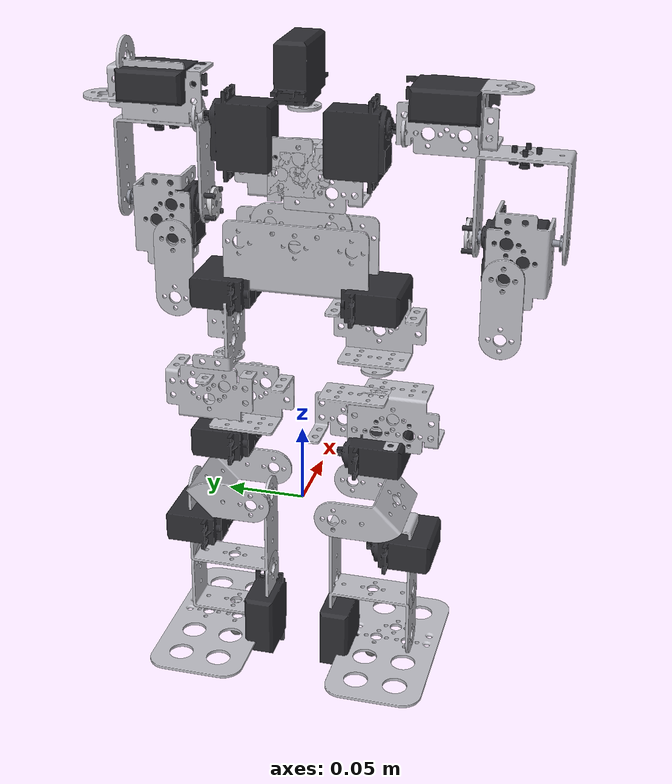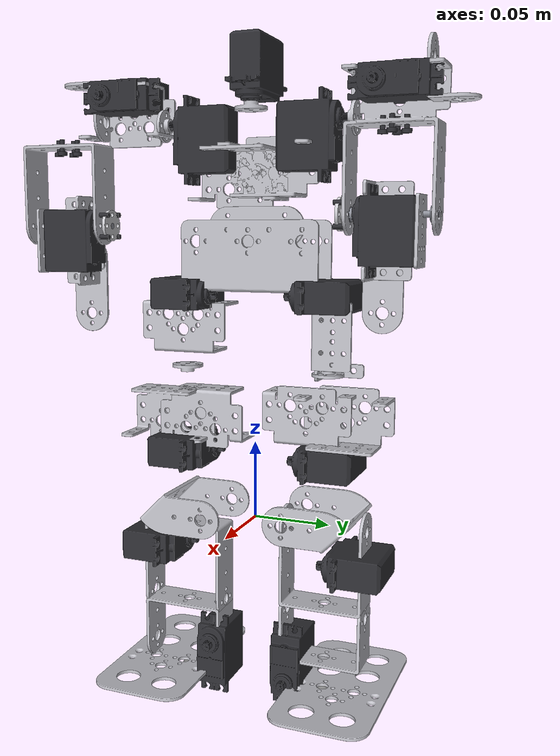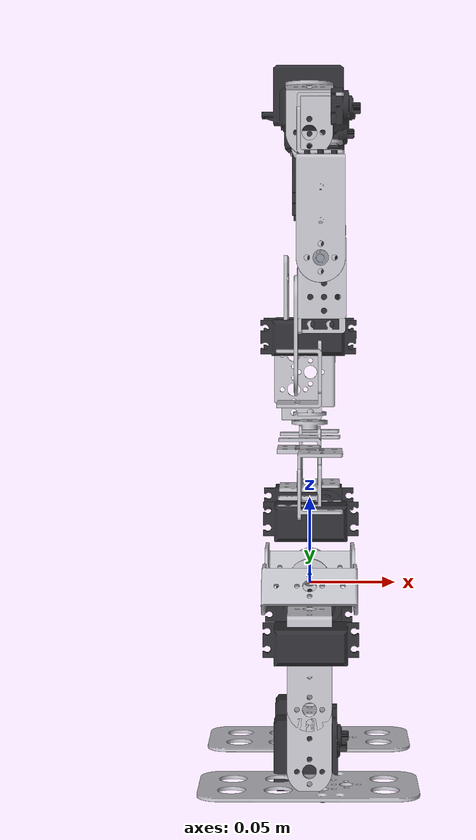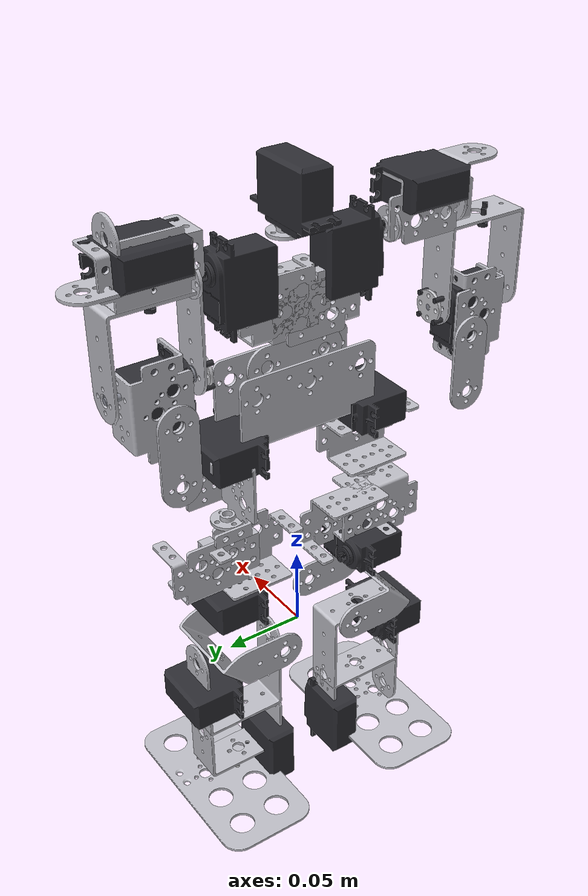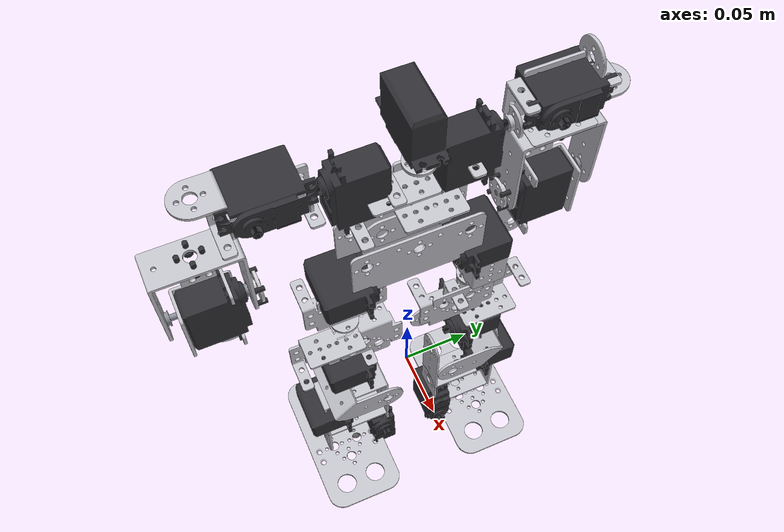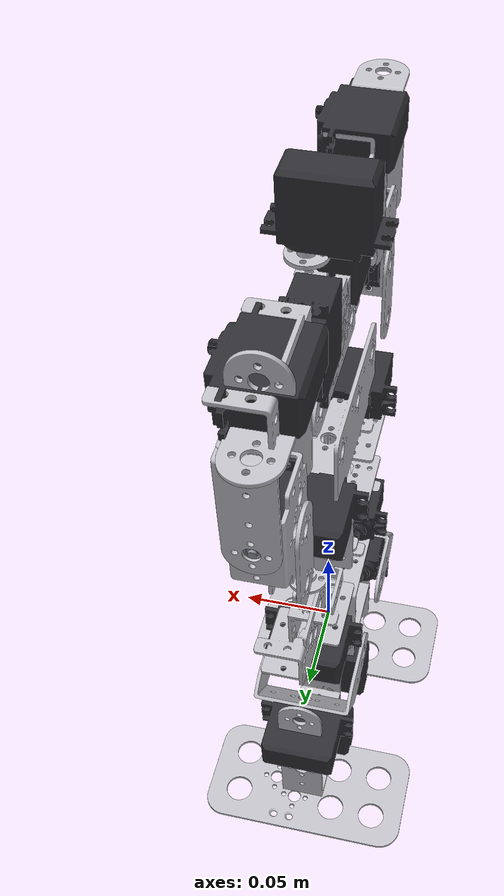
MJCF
<?xml version='1.0' encoding='utf-8'?>
<mujoco model="twoleg">
  <compiler angle="radian" meshdir=".." autolimits="true" />
  <visual>
    <global offwidth="1024" offheight="1024" />
    <headlight ambient="0.55 0.55 0.55" diffuse="0.6 0.6 0.6" specular="0.2 0.2 0.2" />
  </visual>
  <default>
    <default class="twoleg">
      <joint damping="0.05" frictionloss="0.02" armature="0.002" />
      <position kp="20" dampratio="1" forcerange="-3 3" ctrlrange="-1.6 1.6" />
      <default class="visual"><geom type="mesh" contype="0" conaffinity="0" group="2" /></default>
      <default class="collision"><geom group="3" /></default>
    </default>
  </default>
  <asset>
    <mesh name="foot" file="twoleg_mjcf/assets/foot_c.stl" scale="0.001 0.001 0.001" />
    <mesh name="shortU" file="twoleg_mjcf/assets/shortU_c.stl" scale="0.001 0.001 0.001" />
    <mesh name="longU" file="twoleg_mjcf/assets/longU_c.stl" scale="0.001 0.001 0.001" />
    <mesh name="multi" file="twoleg_mjcf/assets/multi_c.stl" scale="0.001 0.001 0.001" />
    <mesh name="straight" file="twoleg_mjcf/assets/straight_c.stl" scale="0.001 0.001 0.001" />
    <mesh name="L_bracket" file="twoleg_mjcf/assets/L_bracket_c.stl" scale="0.001 0.001 0.001" />
    <mesh name="U_beam" file="twoleg_mjcf/assets/U_beam_c.stl" scale="0.001 0.001 0.001" />
    <mesh name="slantU" file="twoleg_mjcf/assets/slantU_c.stl" scale="0.001 0.001 0.001" />
    <mesh name="servo" file="twoleg_mjcf/assets/servo_c.stl" scale="0.001 0.001 0.001" />
    <mesh name="horn" file="twoleg_mjcf/assets/horn_c.stl" scale="0.001 0.001 0.001" />
    <mesh name="bearing" file="twoleg_mjcf/assets/bearing_c.stl" scale="0.001 0.001 0.001" />
    <mesh name="arm_multi" file="robot_item/多功能/多功能支架.STL" scale="0.001 0.001 0.001" />
    <mesh name="arm_straight" file="robot_item/一字/一字支架.STL" scale="0.001 0.001 0.001" />
    <mesh name="arm_servo" file="robot_item/舵机/舵机.STL" scale="0.001 0.001 0.001" />
    <mesh name="arm_horn" file="robot_item/金属舵盘/金属舵盘.STL" scale="0.001 0.001 0.001" />
    <mesh name="arm_longU" file="robot_item/长U/长U支架.STL" scale="0.001 0.001 0.001" />
    <mesh name="arm_bearing" file="robot_item/法兰轴承/法兰轴承.STL" scale="0.001 0.001 0.001" />
    <mesh name="arm_multi_r" file="robot_item/多功能/多功能支架.STL" scale="0.001 -0.001 0.001" />
    <mesh name="arm_straight_r" file="robot_item/一字/一字支架.STL" scale="0.001 -0.001 0.001" />
    <mesh name="arm_servo_r" file="robot_item/舵机/舵机.STL" scale="0.001 -0.001 0.001" />
    <mesh name="arm_horn_r" file="robot_item/金属舵盘/金属舵盘.STL" scale="0.001 -0.001 0.001" />
    <mesh name="arm_longU_r" file="robot_item/长U/长U支架.STL" scale="0.001 -0.001 0.001" />
    <mesh name="arm_bearing_r" file="robot_item/法兰轴承/法兰轴承.STL" scale="0.001 -0.001 0.001" />
    <material name="bracket" rgba="0.75 0.75 0.78 1" />
    <material name="dark" rgba="0.18 0.18 0.2 1" />
    <material name="horn" rgba="0.80 0.80 0.82 1" />
    <material name="steel" rgba="0.55 0.56 0.60 1" />
  </asset>
  <worldbody>

    <body name="torso" pos="0 0 0.165" childclass="twoleg">
      <freejoint name="root_joint" />
      <inertial pos="0 0 0.04" mass="0.40" diaginertia="0.0015 0.0015 0.0015" />

      <geom type="mesh" mesh="U_beam" material="bracket" class="visual" quat="0 0 0.707107 0.707107" />

      <geom type="mesh" mesh="straight" material="bracket" class="visual" pos="0 0 0.022" quat="0.5 0.5 0.5 0.5" />
      <geom type="mesh" mesh="multi" material="bracket" class="visual" pos="0 0.01 0.055" quat="0.5 0.5 0.5 0.5" />
      <geom type="mesh" mesh="multi" material="bracket" class="visual" pos="0 -0.01 0.055" quat="0.5 -0.5 0.5 -0.5" />

      <geom type="mesh" mesh="servo" material="dark" class="visual" pos="0 0 0.115" quat="0 0.7071068 -0.7071068 0" />
      <body name="head" pos="0.009161 0 0.10">
        <joint name="head_yaw" type="hinge" axis="0 0 1" range="-1.5708 1.5708" />
        <inertial pos="0 0 0.02" mass="0.06" diaginertia="0.00005 0.00005 0.00005" />
        <geom type="mesh" mesh="horn" material="bracket" class="visual" pos="0.000000 0.000000 -0.007420" quat="0.5000000 0.5000000 -0.5000000 -0.5000000" />
      </body>

      <geom type="mesh" mesh="servo" material="dark" class="visual" pos="0 0.03608 0.07584" quat="0.7071068 -0.7071068 0 0" />
      <body name="left_shoulder" pos="0 0.062 0.085">
        <joint name="left_shoulder_pitch" type="hinge" axis="0 1 0" range="-1.0 1.0" />
        <joint name="left_shoulder_roll" type="hinge" axis="1 0 0" range="-1.6 1.6" />
        <inertial pos="0 0.045 0.01" mass="0.06" diaginertia="0.0001 0.0001 0.0001" />
        <geom type="mesh" mesh="horn" material="bracket" class="visual" quat="0 0.7071068 0 0.7071068" />
        <geom type="mesh" mesh="multi" material="bracket" class="visual" pos="0 0.025 0.01" quat="0.5 0.5 0.5 0.5" />
        <geom type="mesh" mesh="L_bracket" material="bracket" class="visual" pos="0 0.05 0.018" quat="0.5 0.5 0.5 0.5" />
        <geom type="mesh" mesh="servo" material="dark" class="visual" pos="0.0049 0.0253 0.018" quat="0.7071068 0 0.7071068 0" />
        <body name="left_arm_root" pos="-0.007700 0.002932 0.025192">
          <!-- left_arm.xml tricep (多功能 + 舵机 + 金属舵盘 + 长U); the tricep horn is the
               shoulder pivot and lands on the left_shoulder origin. -->

          <body name="arm_longU_down" pos="0.013500 0.022000 -0.061250" quat="-0.5 0.5 0.5 -0.5">
            <geom name="arm_longU_down_v" mesh="arm_longU" class="visual" material="bracket" pos="-0.027 -0.03225 -0.0125" />
            <geom name="arm_longU_down_c" mesh="arm_longU" class="collision" pos="-0.027 -0.03225 -0.0125" density="2700" />
          </body>
          <geom name="arm_base_screw_1" type="cylinder" size="0.0016 0.005" pos="0.006600 0.022100 -0.030500" material="dark" contype="0" conaffinity="0" group="2" />
          <geom name="arm_base_screw_2" type="cylinder" size="0.0016 0.005" pos="0.020600 0.022100 -0.030500" material="dark" contype="0" conaffinity="0" group="2" />
          <geom name="arm_base_screw_3" type="cylinder" size="0.0016 0.005" pos="0.013500 0.029100 -0.030500" material="dark" contype="0" conaffinity="0" group="2" />
          <geom name="arm_base_screw_4" type="cylinder" size="0.0016 0.005" pos="0.013500 0.015100 -0.030500" material="dark" contype="0" conaffinity="0" group="2" />
          <geom name="arm_base_nut_1" type="cylinder" size="0.003 0.0012" pos="0.006600 0.022100 -0.034500" material="dark" contype="0" conaffinity="0" group="2" />
          <geom name="arm_base_nut_2" type="cylinder" size="0.003 0.0012" pos="0.020600 0.022100 -0.034500" material="dark" contype="0" conaffinity="0" group="2" />
          <geom name="arm_base_nut_3" type="cylinder" size="0.003 0.0012" pos="0.013500 0.029100 -0.034500" material="dark" contype="0" conaffinity="0" group="2" />
          <geom name="arm_base_nut_4" type="cylinder" size="0.003 0.0012" pos="0.013500 0.015100 -0.034500" material="dark" contype="0" conaffinity="0" group="2" />

          <body name="arm_elbow_bearing" pos="0.013250 -0.002019 -0.081250">
            <geom name="arm_elbow_bearing_v" mesh="arm_bearing" class="visual" material="steel" pos="-0.00475 -0.0015 -0.00475" />
          </body>
          <geom name="arm_elbow_shaft" type="cylinder" size="0.002 0.0055" pos="0.013250 -0.004500 -0.081250" quat="0.7071068 0.7071068 0 0" material="steel" contype="0" conaffinity="0" group="2" />
          <body name="arm_far_bearing" pos="0.013250 0.046019 -0.081250">
            <geom name="arm_far_bearing_v" mesh="arm_bearing" class="visual" material="steel" pos="-0.00475 -0.0015 -0.00475" />
          </body>
          <geom name="arm_far_shaft" type="cylinder" size="0.002 0.0045" pos="0.013250 0.044500 -0.081250" quat="0.7071068 0.7071068 0 0" material="steel" contype="0" conaffinity="0" group="2" />
          <body name="left_elbow" pos="0.013250 -0.007500 -0.081250">
            <joint name="left_elbow" type="hinge" axis="0 1 0" range="-1.5 0.2" />
            <inertial pos="0 0 -0.01" mass="0.05" diaginertia="0.0001 0.0001 0.0001" />
            <body name="arm_forearm" pos="-0.012500 0.007000 -0.009750">
              <body name="arm_multi_0_f" pos="0.013500 0.022000 0.000000" quat="0.000000 0.707107 0.000000 0.707107">
                <geom name="arm_multi_0_f_v" mesh="arm_multi" class="visual" material="bracket" pos="-0.029 -0.0185 -0.0125" />
                <geom name="arm_multi_0_f_c" mesh="arm_multi" class="collision" pos="-0.029 -0.0185 -0.0125" density="2700" />
              </body>
              <body name="arm_servo_1_f" pos="0.012750 0.017000 0.000000" quat="0.000000 0.000000 -0.707107 0.707107">
                <geom name="arm_servo_1_f_v" mesh="arm_servo" class="visual" material="dark" pos="-0.009752 -0.027 -0.0215" />
                <geom name="arm_servo_1_f_c" mesh="arm_servo" class="collision" material="dark" pos="-0.009752 -0.027 -0.0215" density="1600" />
              </body>
              <body name="arm_horn_2_f" pos="0.012750 -0.007000 0.010000" quat="0.000000 0.000000 1.000000 0.000000">
                <geom name="arm_horn_2_f_v" mesh="arm_horn" class="visual" material="horn" pos="-0.01 -0.0026 -0.01" />
                <geom name="arm_horn_2_f_c" mesh="arm_horn" class="collision" material="horn" pos="-0.01 -0.0026 -0.01" density="2700" />
              </body>
              <body name="arm_straight_3_f" pos="0.000003 0.014996 -0.029991" quat="0.707107 0.000000 0.707107 0.000000">
                <geom name="arm_straight_3_f_v" mesh="arm_straight" class="visual" material="bracket" pos="-0.0315 -0.0125 -0.001001" />
                <geom name="arm_straight_3_f_c" mesh="arm_straight" class="collision" pos="-0.0315 -0.0125 -0.001001" density="2700" />
              </body>
              <geom name="arm_horn_s0_f" type="cylinder" size="0.0016 0.004" pos="0.005500 -0.007000 0.016750" quat="0.7071068 0.7071068 0 0" material="dark" contype="0" conaffinity="0" group="2" />
              <geom name="arm_horn_s1_f" type="cylinder" size="0.0016 0.004" pos="0.019500 -0.007000 0.016750" quat="0.7071068 0.7071068 0 0" material="dark" contype="0" conaffinity="0" group="2" />
              <geom name="arm_horn_s2_f" type="cylinder" size="0.0016 0.004" pos="0.005500 -0.007000 0.002750" quat="0.7071068 0.7071068 0 0" material="dark" contype="0" conaffinity="0" group="2" />
              <geom name="arm_horn_s3_f" type="cylinder" size="0.0016 0.004" pos="0.019500 -0.007000 0.002750" quat="0.7071068 0.7071068 0 0" material="dark" contype="0" conaffinity="0" group="2" />
            </body>
          </body>
        </body>
      </body>

      <geom type="mesh" mesh="servo" material="dark" class="visual" pos="0 -0.03608 0.07584" quat="0 0 -0.7071068 0.7071068" />
      <body name="right_shoulder" pos="0 -0.062 0.085">
        <joint name="right_shoulder_pitch" type="hinge" axis="0 1 0" range="-1.0 1.0" />
        <joint name="right_shoulder_roll" type="hinge" axis="1 0 0" range="-1.6 1.6" />
        <inertial pos="0 -0.045 0.01" mass="0.06" diaginertia="0.0001 0.0001 0.0001" />
        <geom type="mesh" mesh="horn" material="bracket" class="visual" quat="0.7071068 0 -0.7071068 0" />
        <geom type="mesh" mesh="multi" material="bracket" class="visual" pos="0 -0.025 0.01" quat="-0.5 0.5 -0.5 0.5" />
        <geom type="mesh" mesh="L_bracket" material="bracket" class="visual" pos="0 -0.05 0.018" quat="-0.5 0.5 -0.5 0.5" />
        <geom type="mesh" mesh="servo" material="dark" class="visual" pos="0.0049 -0.0253 0.018" quat="0.7071068 0 0.7071068 0" />
        <body name="right_arm_root" pos="-0.007700 -0.047132 0.018808">
          <!-- Sagittal mirror (Y -> -Y) of the left arm: mirrored meshes, negated Y,
               quats (w,x,y,z)->(w,-x,y,-z).  Tricep horn lands on the right_shoulder
               origin. -->

          <body name="arm_longU_down_r" pos="0.013500 -0.022000 -0.061250" quat="-0.5 -0.5 0.5 0.5">
            <geom name="arm_longU_down_r_v" mesh="arm_longU_r" class="visual" material="bracket" pos="-0.027 0.03225 -0.0125" />
            <geom name="arm_longU_down_r_c" mesh="arm_longU_r" class="collision" pos="-0.027 0.03225 -0.0125" density="2700" />
          </body>
          <geom name="arm_base_screw_1_r" type="cylinder" size="0.0016 0.005" pos="0.006600 -0.022100 -0.030500" material="dark" contype="0" conaffinity="0" group="2" />
          <geom name="arm_base_screw_2_r" type="cylinder" size="0.0016 0.005" pos="0.020600 -0.022100 -0.030500" material="dark" contype="0" conaffinity="0" group="2" />
          <geom name="arm_base_screw_3_r" type="cylinder" size="0.0016 0.005" pos="0.013500 -0.029100 -0.030500" material="dark" contype="0" conaffinity="0" group="2" />
          <geom name="arm_base_screw_4_r" type="cylinder" size="0.0016 0.005" pos="0.013500 -0.015100 -0.030500" material="dark" contype="0" conaffinity="0" group="2" />
          <geom name="arm_base_nut_1_r" type="cylinder" size="0.003 0.0012" pos="0.006600 -0.022100 -0.034500" material="dark" contype="0" conaffinity="0" group="2" />
          <geom name="arm_base_nut_2_r" type="cylinder" size="0.003 0.0012" pos="0.020600 -0.022100 -0.034500" material="dark" contype="0" conaffinity="0" group="2" />
          <geom name="arm_base_nut_3_r" type="cylinder" size="0.003 0.0012" pos="0.013500 -0.029100 -0.034500" material="dark" contype="0" conaffinity="0" group="2" />
          <geom name="arm_base_nut_4_r" type="cylinder" size="0.003 0.0012" pos="0.013500 -0.015100 -0.034500" material="dark" contype="0" conaffinity="0" group="2" />

          <body name="arm_elbow_bearing_r" pos="0.013250 0.002019 -0.081250">
            <geom name="arm_elbow_bearing_r_v" mesh="arm_bearing_r" class="visual" material="steel" pos="-0.00475 0.0015 -0.00475" />
          </body>
          <geom name="arm_elbow_shaft_r" type="cylinder" size="0.002 0.0055" pos="0.013250 0.004500 -0.081250" quat="0.7071068 -0.7071068 0 0" material="steel" contype="0" conaffinity="0" group="2" />
          <body name="arm_far_bearing_r" pos="0.013250 -0.046019 -0.081250">
            <geom name="arm_far_bearing_r_v" mesh="arm_bearing_r" class="visual" material="steel" pos="-0.00475 0.0015 -0.00475" />
          </body>
          <geom name="arm_far_shaft_r" type="cylinder" size="0.002 0.0045" pos="0.013250 -0.044500 -0.081250" quat="0.7071068 -0.7071068 0 0" material="steel" contype="0" conaffinity="0" group="2" />
          <body name="right_elbow" pos="0.013250 0.007500 -0.081250">
            <joint name="right_elbow" type="hinge" axis="0 1 0" range="-1.5 0.2" />
            <inertial pos="0 0 -0.01" mass="0.05" diaginertia="0.0001 0.0001 0.0001" />
            <body name="arm_forearm_r" pos="-0.012500 -0.007000 -0.009750">
              <body name="arm_multi_0_f_r" pos="0.013500 -0.022000 0.000000" quat="0.000000 -0.707107 0.000000 -0.707107">
                <geom name="arm_multi_0_f_r_v" mesh="arm_multi_r" class="visual" material="bracket" pos="-0.029 0.0185 -0.0125" />
                <geom name="arm_multi_0_f_r_c" mesh="arm_multi_r" class="collision" pos="-0.029 0.0185 -0.0125" density="2700" />
              </body>
              <body name="arm_servo_1_f_r" pos="0.012750 -0.017000 0.000000" quat="0.000000 0.000000 -0.707107 -0.707107">
                <geom name="arm_servo_1_f_r_v" mesh="arm_servo_r" class="visual" material="dark" pos="-0.009752 0.027 -0.0215" />
                <geom name="arm_servo_1_f_r_c" mesh="arm_servo_r" class="collision" material="dark" pos="-0.009752 0.027 -0.0215" density="1600" />
              </body>
              <body name="arm_horn_2_f_r" pos="0.012750 0.007000 0.010000" quat="0.000000 0.000000 1.000000 0.000000">
                <geom name="arm_horn_2_f_r_v" mesh="arm_horn_r" class="visual" material="horn" pos="-0.01 0.0026 -0.01" />
                <geom name="arm_horn_2_f_r_c" mesh="arm_horn_r" class="collision" material="horn" pos="-0.01 0.0026 -0.01" density="2700" />
              </body>
              <body name="arm_straight_3_f_r" pos="0.000003 -0.014996 -0.029991" quat="0.707107 0.000000 0.707107 0.000000">
                <geom name="arm_straight_3_f_r_v" mesh="arm_straight_r" class="visual" material="bracket" pos="-0.0315 0.0125 -0.001001" />
                <geom name="arm_straight_3_f_r_c" mesh="arm_straight_r" class="collision" pos="-0.0315 0.0125 -0.001001" density="2700" />
              </body>
              <geom name="arm_horn_s0_f_r" type="cylinder" size="0.0016 0.004" pos="0.005500 0.007000 0.016750" quat="0.7071068 -0.7071068 0 0" material="dark" contype="0" conaffinity="0" group="2" />
              <geom name="arm_horn_s1_f_r" type="cylinder" size="0.0016 0.004" pos="0.019500 0.007000 0.016750" quat="0.7071068 -0.7071068 0 0" material="dark" contype="0" conaffinity="0" group="2" />
              <geom name="arm_horn_s2_f_r" type="cylinder" size="0.0016 0.004" pos="0.005500 0.007000 0.002750" quat="0.7071068 -0.7071068 0 0" material="dark" contype="0" conaffinity="0" group="2" />
              <geom name="arm_horn_s3_f_r" type="cylinder" size="0.0016 0.004" pos="0.019500 0.007000 0.002750" quat="0.7071068 -0.7071068 0 0" material="dark" contype="0" conaffinity="0" group="2" />
            </body>
          </body>
        </body>
      </body>

      <geom type="mesh" mesh="servo" material="dark" class="visual" pos="0 0.045 -0.02" quat="0.5 0.5 -0.5 0.5" />
      <body name="left_hip_yaw" pos="0 0.048 -0.028">
        <joint name="left_hip_roll" type="hinge" axis="1 0 0" range="-0.8 0.8" />
        <inertial pos="0 0 -0.02" mass="0.06" diaginertia="0.0001 0.0001 0.0001" />
        <geom type="mesh" mesh="multi" material="bracket" class="visual" pos="0 0 -0.015" quat="0.5 -0.5 0.5 0.5" />

        <body name="left_hip_pitch" pos="0 0 -0.04">
          <joint name="left_hip_pitch" type="hinge" axis="0 1 0" range="-1.3 1.3" />
          <inertial pos="0 0 -0.035" mass="0.09" diaginertia="0.0002 0.0002 0.0002" />
          <geom type="mesh" mesh="horn" material="bracket" class="visual" quat="0.5 0.5 0.5 0.5" />
          <geom type="mesh" mesh="multi" material="bracket" class="visual" pos="0 0.012 -0.03" quat="0.5 0.5 0.5 0.5" />
          <geom type="mesh" mesh="multi" material="bracket" class="visual" pos="0 -0.012 -0.03" quat="0.5 0.5 -0.5 -0.5" />
          <geom type="mesh" mesh="servo" material="dark" class="visual" pos="0 0 -0.055" quat="0.5 0.5 -0.5 0.5" />

          <body name="left_knee" pos="0 0 -0.066">
            <joint name="left_knee" type="hinge" axis="0 1 0" range="-1.6 0.15" />
            <inertial pos="0 0 -0.035" mass="0.08" diaginertia="0.0002 0.0002 0.0002" />
            <geom type="mesh" mesh="slantU" material="bracket" class="visual" pos="0 0 -0.028" quat="0.5 0.5 0.5 0.5" />
            <geom type="mesh" mesh="servo" material="dark" class="visual" pos="0 0.02 -0.055" quat="0.5 0.5 -0.5 0.5" />
            <geom type="mesh" mesh="longU" material="bracket" class="visual" pos="0 0 -0.062" quat="0.5 0.5 0.5 0.5" />

            <body name="left_ankle" pos="0 0 -0.098">
              <joint name="left_ankle" type="hinge" axis="1 0 0" range="-0.9 0.9" />
              <inertial pos="0 0 -0.012" mass="0.06" diaginertia="0.0001 0.0001 0.0001" />
              <geom type="mesh" mesh="shortU" material="bracket" class="visual" pos="0 0 -0.01" quat="0.5 0.5 0.5 0.5" />
              <geom type="mesh" mesh="servo" material="dark" class="visual" pos="0 -0.022 -0.028" quat="0.5 0.5 0.5 0.5" />
              <geom type="mesh" mesh="foot" material="bracket" class="visual" pos="0 0.012 -0.04" />
              <geom type="box" size="0.062 0.032 0.003" pos="0 0.012 -0.043" rgba="0.2 0.2 0.2 1" group="3" name="left_foot_col" />
              <site name="left_foot" pos="0 0 -0.045" />
            </body>
          </body>
        </body>
      </body>

      <geom type="mesh" mesh="servo" material="dark" class="visual" pos="0 -0.045 -0.02" quat="-0.5 0.5 -0.5 -0.5" />
      <body name="right_hip_yaw" pos="0 -0.048 -0.028">
        <joint name="right_hip_roll" type="hinge" axis="1 0 0" range="-0.8 0.8" />
        <inertial pos="0 0 -0.02" mass="0.06" diaginertia="0.0001 0.0001 0.0001" />
        <geom type="mesh" mesh="multi" material="bracket" class="visual" pos="0 0 -0.015" quat="0.5 0.5 -0.5 -0.5" />
        <body name="right_hip_pitch" pos="0 0 -0.04">
          <joint name="right_hip_pitch" type="hinge" axis="0 1 0" range="-1.3 1.3" />
          <inertial pos="0 0 -0.035" mass="0.09" diaginertia="0.0002 0.0002 0.0002" />
          <geom type="mesh" mesh="horn" material="bracket" class="visual" quat="0.5 -0.5 0.5 -0.5" />
          <geom type="mesh" mesh="multi" material="bracket" class="visual" pos="0 -0.012 -0.03" quat="0.5 -0.5 0.5 -0.5" />
          <geom type="mesh" mesh="multi" material="bracket" class="visual" pos="0 0.012 -0.03" quat="0.5 -0.5 -0.5 0.5" />
          <geom type="mesh" mesh="servo" material="dark" class="visual" pos="0 0 -0.055" quat="0.5 -0.5 -0.5 -0.5" />
          <body name="right_knee" pos="0 0 -0.066">
            <joint name="right_knee" type="hinge" axis="0 1 0" range="-1.6 0.15" />
            <inertial pos="0 0 -0.035" mass="0.08" diaginertia="0.0002 0.0002 0.0002" />
            <geom type="mesh" mesh="slantU" material="bracket" class="visual" pos="0 0 -0.028" quat="0.5 -0.5 0.5 -0.5" />
            <geom type="mesh" mesh="servo" material="dark" class="visual" pos="0 -0.02 -0.055" quat="0.5 -0.5 -0.5 -0.5" />
            <geom type="mesh" mesh="longU" material="bracket" class="visual" pos="0 0 -0.062" quat="0.5 -0.5 0.5 -0.5" />
            <body name="right_ankle" pos="0 0 -0.098">
              <joint name="right_ankle" type="hinge" axis="1 0 0" range="-0.9 0.9" />
              <inertial pos="0 0 -0.012" mass="0.06" diaginertia="0.0001 0.0001 0.0001" />
              <geom type="mesh" mesh="shortU" material="bracket" class="visual" pos="0 0 -0.01" quat="0.5 -0.5 0.5 -0.5" />
              <geom type="mesh" mesh="servo" material="dark" class="visual" pos="0 0.022 -0.028" quat="0.5 -0.5 0.5 -0.5" />
              <geom type="mesh" mesh="foot" material="bracket" class="visual" pos="0 -0.012 -0.04" />
              <geom type="box" size="0.062 0.032 0.003" pos="0 -0.012 -0.043" rgba="0.2 0.2 0.2 1" group="3" name="right_foot_col" />
              <site name="right_foot" pos="0 0 -0.045" />
            </body>
          </body>
        </body>
      </body>
    </body>
  </worldbody>
  <keyframe>

    <key name="STAND" qpos="0 0 0.165 0.7071068 0 0 0.7071068 0 0 0 0 0 0 0 0 0 0 0 0 0 0 0" />
    <key name="ARMS_STRAIGHT" qpos="0 0 0.165 0.7071068 0 0 0.7071068 0 0 0 0 0 0 0 0 0 0 0 0 0 0 0" />
  </keyframe>
  <actuator>
    <position name="head_yaw" joint="head_yaw" />
    <position name="left_shoulder_pitch" joint="left_shoulder_pitch" />
    <position name="left_elbow" joint="left_elbow" />
    <position name="left_shoulder_roll" joint="left_shoulder_roll" />
    <position name="right_shoulder_pitch" joint="right_shoulder_pitch" />
    <position name="right_elbow" joint="right_elbow" />
    <position name="right_shoulder_roll" joint="right_shoulder_roll" />
    <position name="left_hip_roll" joint="left_hip_roll" />
    <position name="left_hip_pitch" joint="left_hip_pitch" />
    <position name="left_knee" joint="left_knee" />
    <position name="left_ankle" joint="left_ankle" />
    <position name="right_hip_roll" joint="right_hip_roll" />
    <position name="right_hip_pitch" joint="right_hip_pitch" />
    <position name="right_knee" joint="right_knee" />
    <position name="right_ankle" joint="right_ankle" />
  </actuator>
</mujoco>
